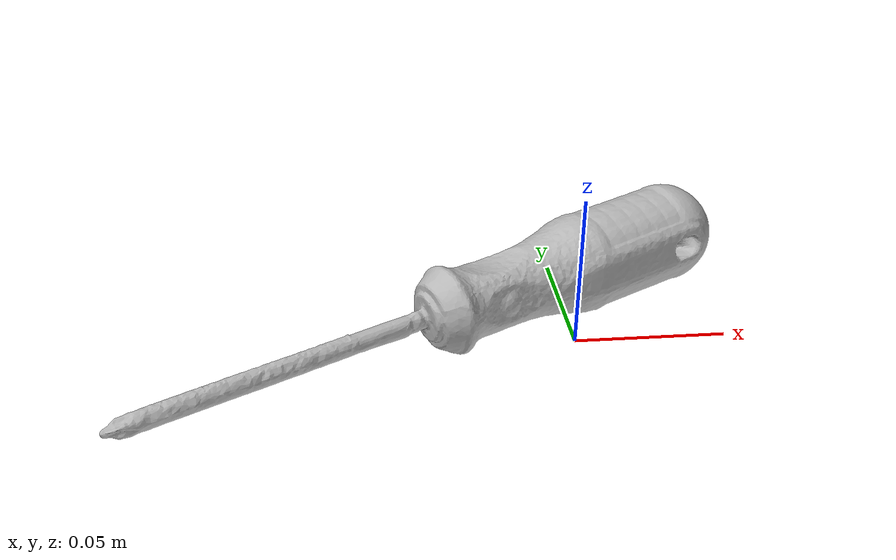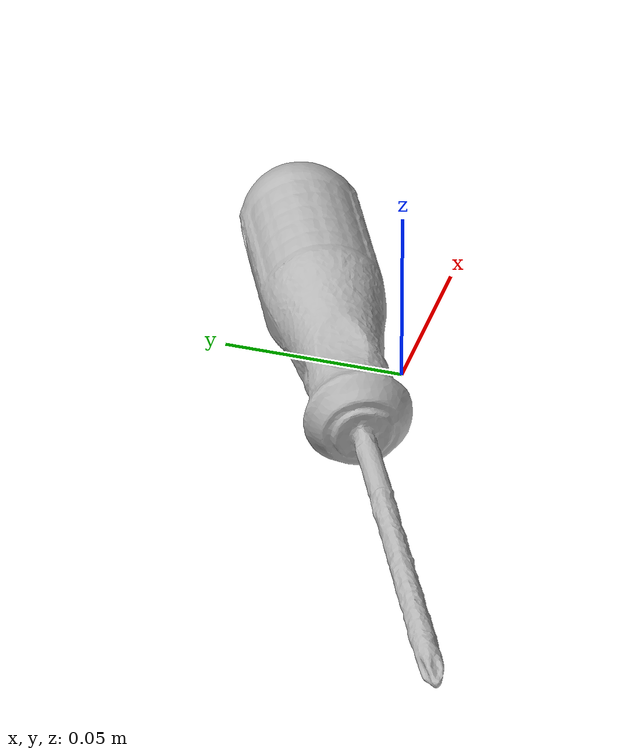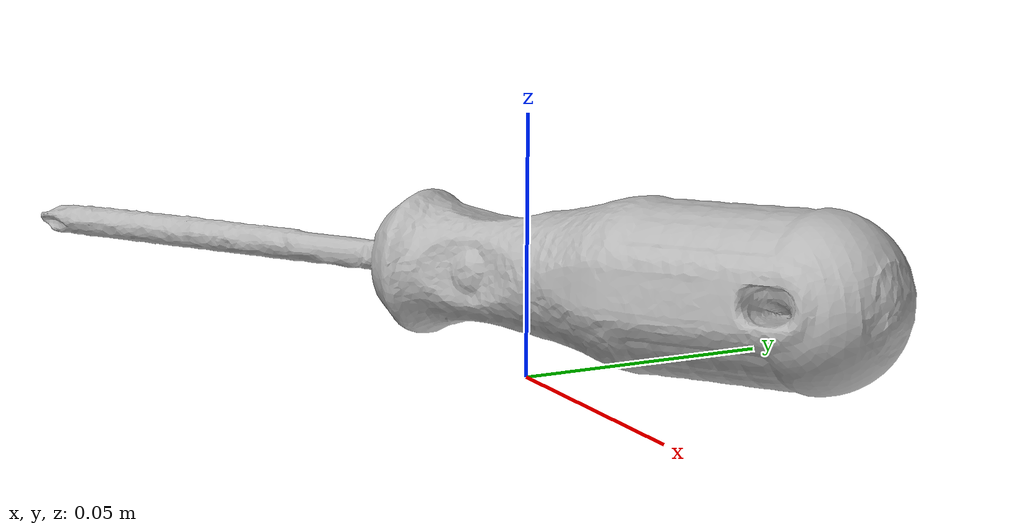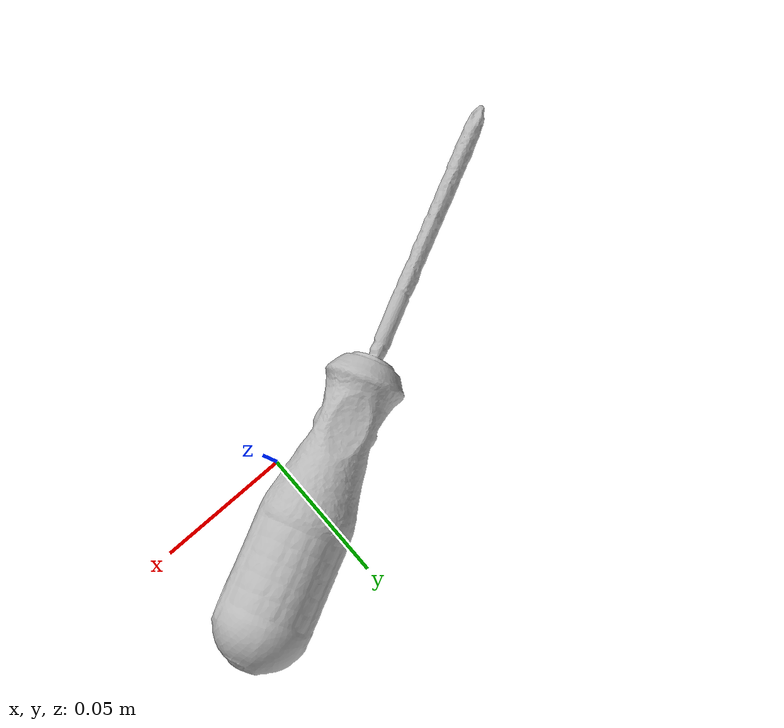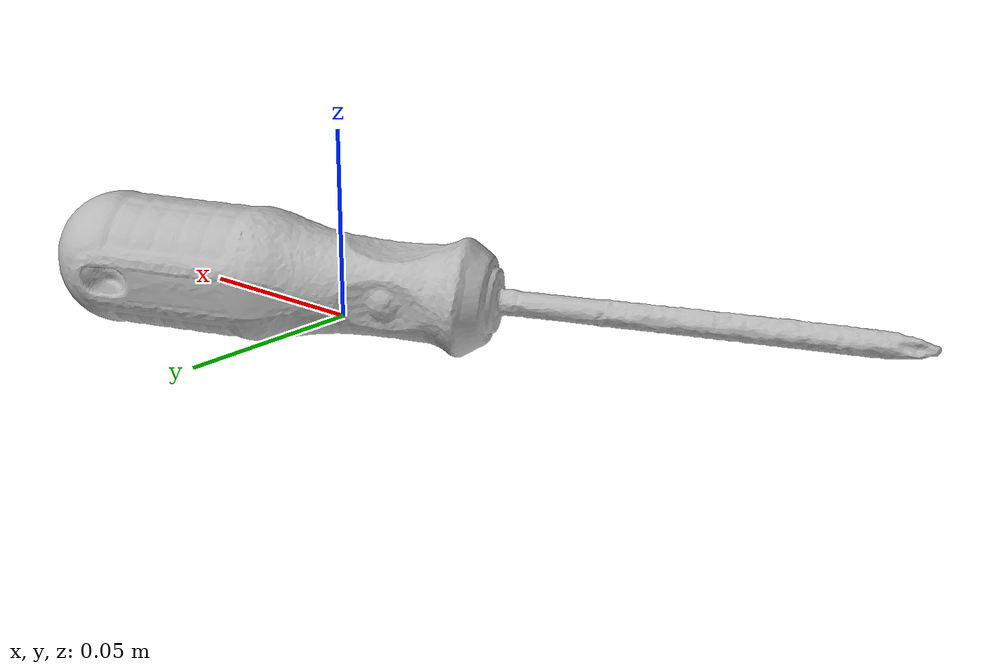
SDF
<?xml version='1.0'?>
<sdf version="1.4">
  <model name="phillips_screwdriver">
    <static>false</static>
    <link name="link">
      <inertial>
        <pose>0.0026626279153952586 0.02222386939344705 0.01637227553798352 1.6522155005369874 -1.0056759124337349 -1.1744857422472434</pose>
        <mass>7.700548566461368e-05</mass>
        <inertia>
          <ixx>1.0868078692455586e-07</ixx>
          <ixy>1.0414004878756854e-23</ixy>
          <ixz>7.411900555134956e-25</ixz>
          <iyy>1.0863412549561536e-07</iyy>
          <iyz>-8.13563924364939e-24</iyz>
          <izz>8.538219861143367e-09</izz>
        </inertia>
      </inertial>
      <collision name="collision">
        <geometry>
          <mesh>
            <!-- Use a downsampled mesh for collisions -->
            <uri>model://043_phillips_screwdriver/google_16k/043_phillips_screwdriver.obj</uri>
            </mesh>
        </geometry>
        <surface>
          <friction>
            <ode>
              <mu>0.9</mu>
              <mu2>0.9</mu2>
            </ode>
          </friction>
          <contact>
            <ode>
              <kp>1000000000000.0</kp>
              <kd>1</kd>
              <min_depth>0.0001</min_depth>
              <max_vel>0.01</max_vel>
            </ode>
          </contact>
          <bounce>
            <restitution_coefficient>0.1</restitution_coefficient>
            <threshold>1000.0</threshold>
          </bounce>
        </surface>
      </collision>
      <visual name="visual">
        <geometry>
          <mesh>
            <uri>model://043_phillips_screwdriver/google_16k/043_phillips_screwdriver.dae</uri>
            </mesh>
        </geometry>
      </visual>
    </link>
  </model>
</sdf>
